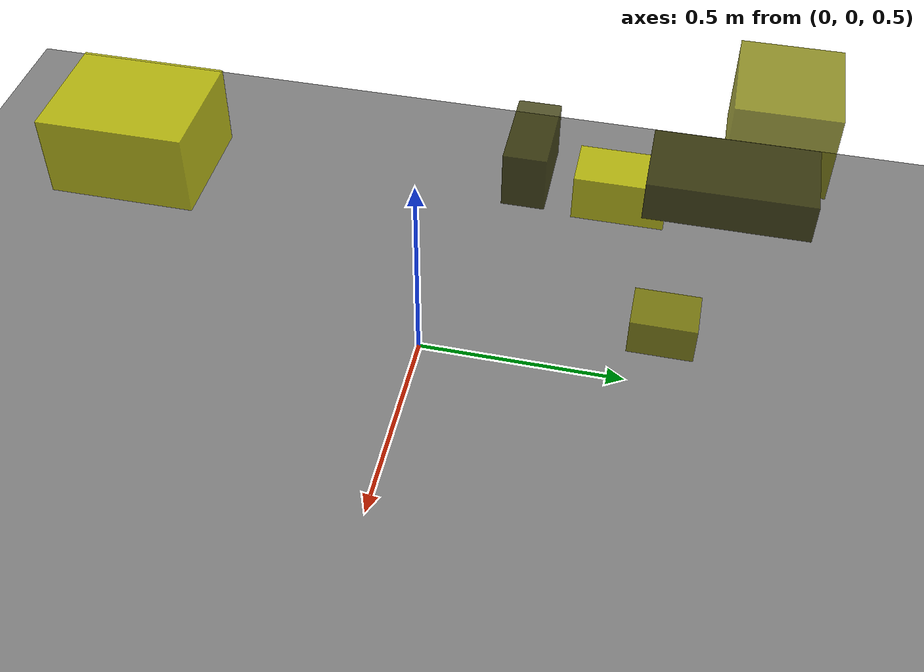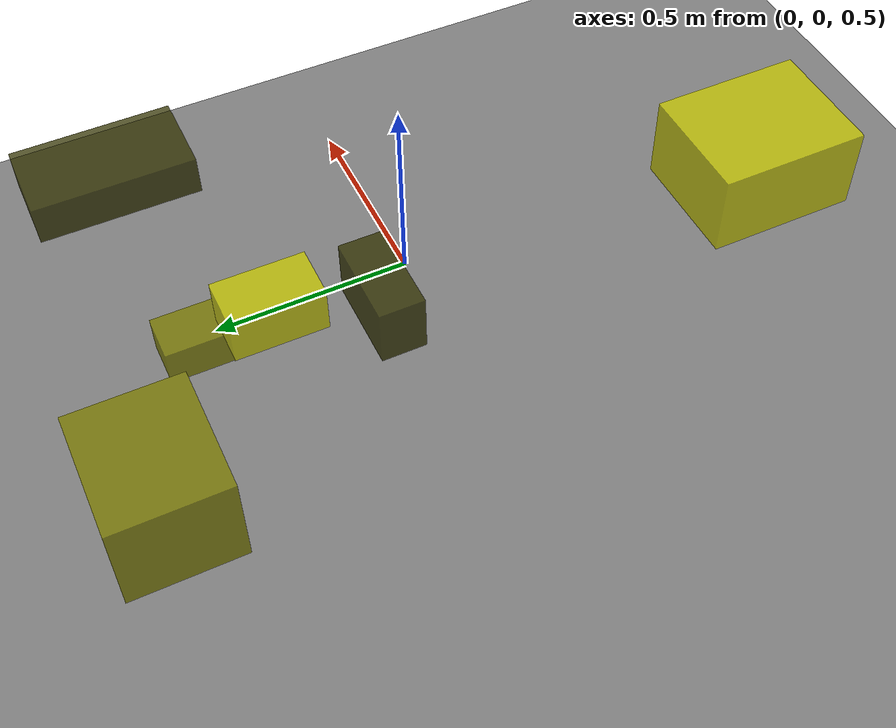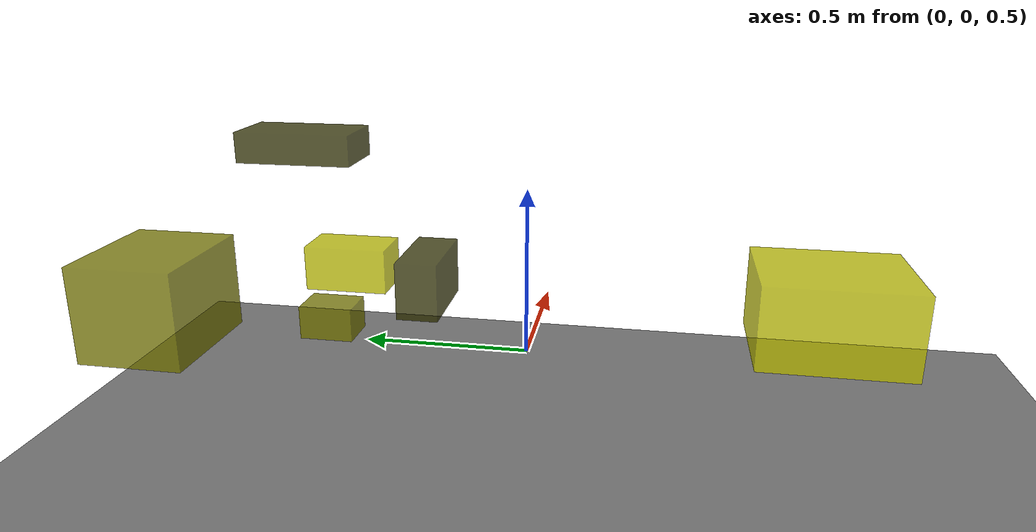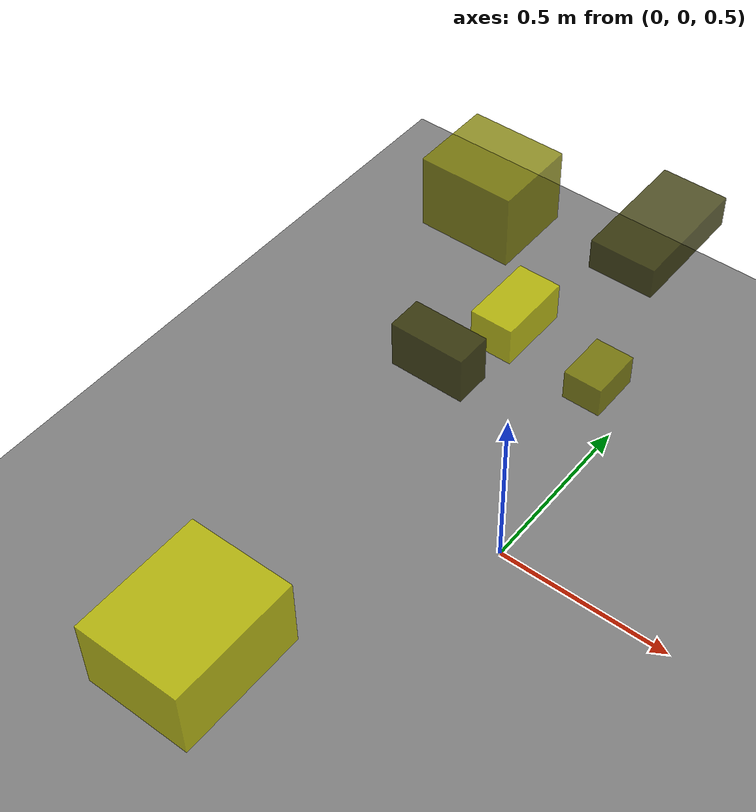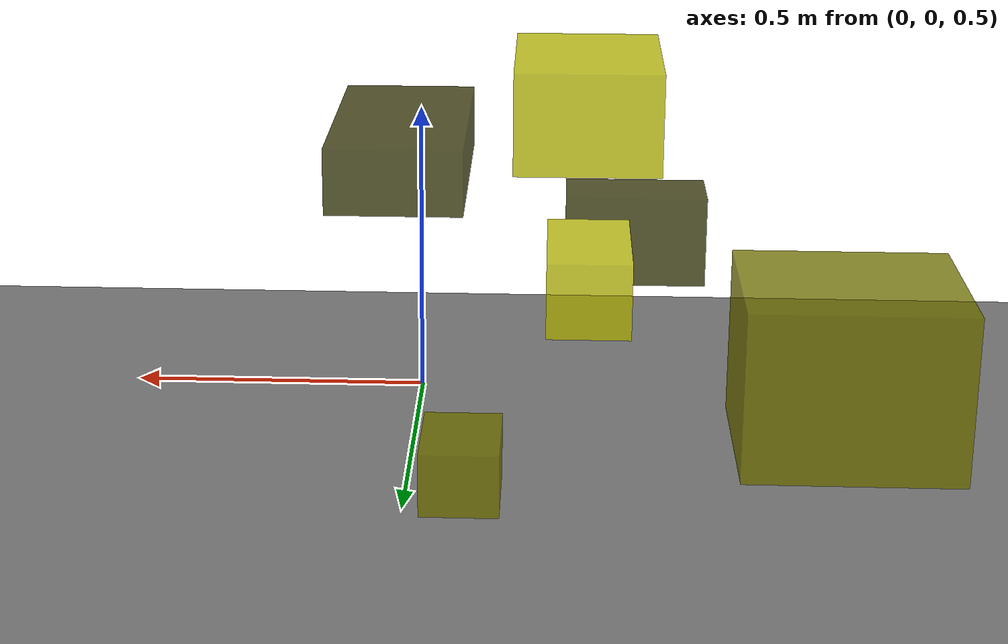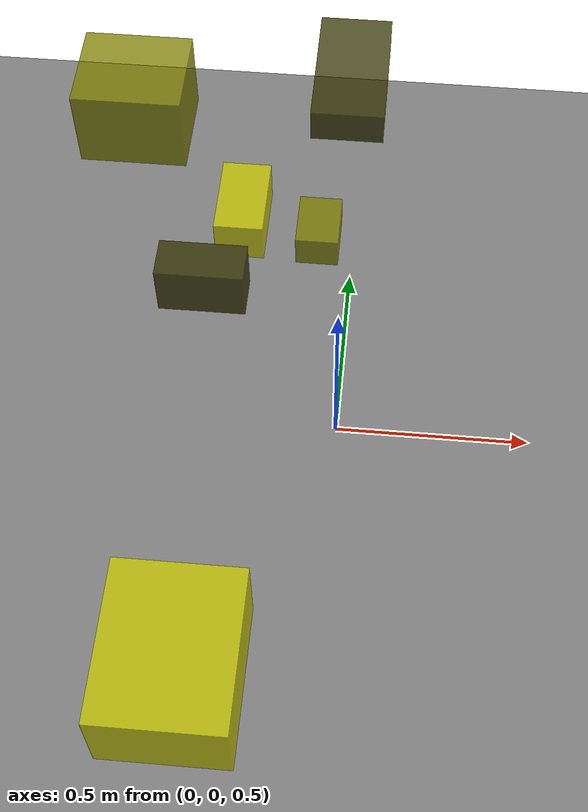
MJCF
<?xml version="1.0"?>
<mujoco model="obstacle_scene">
  <compiler angle="radian" coordinate="local"/>
  <option timestep="0.001" gravity="0 0 -9.81"/>

  <asset>
    <material name="obstacle_mat" rgba="0.8 0.8 0.0 0.8"/>
    <material name="ground_mat" rgba="0.5 0.5 0.5 1"/>
  </asset>

  <worldbody>
    <!-- Ground plane -->
    <geom name="ground" type="plane" size="3 3 0.1" material="ground_mat"/>

    <!-- Obstacles -->
    <body name="obstacle_0" pos="-0.018627 0.657350 1.115194">
      <geom name="obs_0" type="box" size="0.089960 0.168567 0.044022" rgba="0.2 0.2 0.0 0.8"/>
    </body>
    <body name="obstacle_1" pos="-0.614682 0.785292 0.860794">
      <geom name="obs_1" type="box" size="0.145654 0.126141 0.116273" rgba="0.5 0.5 0.0 0.8"/>
    </body>
    <body name="obstacle_2" pos="-0.291402 -0.791609 0.805450">
      <geom name="obs_2" type="box" size="0.149878 0.184488 0.106279" rgba="0.8 0.8 0.0 0.8"/>
    </body>
    <body name="obstacle_3" pos="-0.354506 0.200478 0.850926">
      <geom name="obs_3" type="box" size="0.110233 0.051972 0.072149" rgba="0.2 0.2 0.0 0.8"/>
    </body>
    <body name="obstacle_4" pos="-0.093749 0.572353 0.609113">
      <geom name="obs_4" type="box" size="0.058618 0.078619 0.048504" rgba="0.5 0.5 0.0 0.8"/>
    </body>
    <body name="obstacle_5" pos="-0.277874 0.427474 0.851312">
      <geom name="obs_5" type="box" size="0.062442 0.107668 0.057831" rgba="0.8 0.8 0.0 0.8"/>
    </body>
  </worldbody>
</mujoco>
